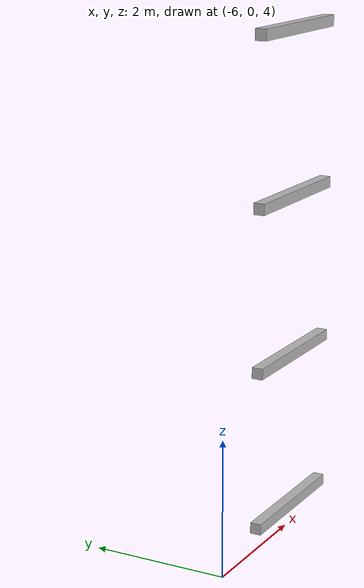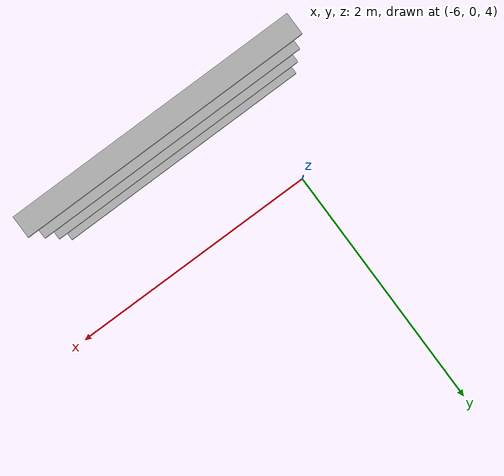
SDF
<sdf version="1.7">
 <world name="default">
  <model name="orthogonal_747_2.000.15_TS">
   <static>1</static>
   <link name="x_link_3_2_0">
    <inertial>
     <mass>1</mass>
     <inertia>
      <ixx>0.166667</ixx>
      <ixy>0</ixy>
      <ixz>0</ixz>
      <iyy>0.166667</iyy>
      <iyz>0</iyz>
      <izz>0.166667</izz>
     </inertia>
    </inertial>
    <pose>1.075 4.3 7.525 0 -0 0</pose>
    <visual name="visual_0">
     <laser_retro>2948</laser_retro>
     <geometry><box><size>2 1e-06 0.15</size></box></geometry>
     <material>
      <script><name>Gazebo/Grey</name><uri>file://media/materials/scripts/gazebo.material</uri></script>
      <shader type="pixel"><normal_map>__default__</normal_map></shader>
      <ambient>0.678 0.498 0.659 1</ambient>
      <diffuse>0.7 0.7 0.7 1</diffuse>
      <specular>0.01 0.01 0.01 1</specular>
      <emissive>0 0 0 1</emissive>
     </material>
     <pose>0 -0.075 0 0 -0 0</pose>
     <transparency>1</transparency>
    </visual>
    <visual name="visual_1">
     <laser_retro>2949</laser_retro>
     <geometry><box><size>2 1e-06 0.15</size></box></geometry>
     <material>
      <script><name>Gazebo/Grey</name><uri>file://media/materials/scripts/gazebo.material</uri></script>
      <shader type="pixel"><normal_map>__default__</normal_map></shader>
      <ambient>0.447 0.624 0.812 1</ambient>
      <diffuse>0.7 0.7 0.7 1</diffuse>
      <specular>0.01 0.01 0.01 1</specular>
      <emissive>0 0 0 1</emissive>
     </material>
     <pose>0 0.075 0 0 -0 0</pose>
     <transparency>1</transparency>
    </visual>
    <visual name="visual_2">
     <laser_retro>2950</laser_retro>
     <geometry><box><size>2 0.15 1e-06</size></box></geometry>
     <material>
      <script><name>Gazebo/Grey</name><uri>file://media/materials/scripts/gazebo.material</uri></script>
      <shader type="pixel"><normal_map>__default__</normal_map></shader>
      <ambient>0.988 0.686 0.243 1</ambient>
      <diffuse>0.7 0.7 0.7 1</diffuse>
      <specular>0.01 0.01 0.01 1</specular>
      <emissive>0 0 0 1</emissive>
     </material>
     <pose>0 0 -0.075 0 -0 0</pose>
     <transparency>1</transparency>
    </visual>
    <visual name="visual_3">
     <laser_retro>2951</laser_retro>
     <geometry><box><size>1e-06 0.15 0.15</size></box></geometry>
     <material>
      <script><name>Gazebo/Grey</name><uri>file://media/materials/scripts/gazebo.material</uri></script>
      <shader type="pixel"><normal_map>__default__</normal_map></shader>
      <ambient>0.988 0.914 0.31 1</ambient>
      <diffuse>0.7 0.7 0.7 1</diffuse>
      <specular>0.01 0.01 0.01 1</specular>
      <emissive>0 0 0 1</emissive>
     </material>
     <pose>1 0 0 0 -0 0</pose>
     <transparency>1</transparency>
    </visual>
    <visual name="visual_4">
     <laser_retro>2952</laser_retro>
     <geometry><box><size>2 0.15 1e-06</size></box></geometry>
     <material>
      <script><name>Gazebo/Grey</name><uri>file://media/materials/scripts/gazebo.material</uri></script>
      <shader type="pixel"><normal_map>__default__</normal_map></shader>
      <ambient>0.937 0.161 0.161 1</ambient>
      <diffuse>0.7 0.7 0.7 1</diffuse>
      <specular>0.01 0.01 0.01 1</specular>
      <emissive>0 0 0 1</emissive>
     </material>
     <pose>0 0 0.075 0 -0 0</pose>
     <transparency>1</transparency>
    </visual>
    <visual name="visual_5">
     <laser_retro>2953</laser_retro>
     <geometry><box><size>1e-06 0.15 0.15</size></box></geometry>
     <material>
      <script><name>Gazebo/Grey</name><uri>file://media/materials/scripts/gazebo.material</uri></script>
      <shader type="pixel"><normal_map>__default__</normal_map></shader>
      <ambient>0.541 0.886 0.204 1</ambient>
      <diffuse>0.7 0.7 0.7 1</diffuse>
      <specular>0.01 0.01 0.01 1</specular>
      <emissive>0 0 0 1</emissive>
     </material>
     <pose>-1 0 0 0 -0 0</pose>
     <transparency>1</transparency>
    </visual>
    <visual name="visual_texture">
     <geometry><box><size>1.9998 0.149985 0.149985</size></box></geometry>
     <material>
      <script>
       <uri>model://BASE_MODELS/simple_block_v2_textured/materials/scripts</uri>
       <uri>model://BASE_MODELS/simple_block_v2_textured/materials/textures</uri>
       <name>metal</name>
      </script>
     </material>
     <laser_retro>2954</laser_retro>
    </visual>
    <collision name="collision">
     <geometry><box><size>2 0.15 0.15</size></box></geometry>
     <surface>
      <friction>
       <ode><mu>1</mu><mu2>1</mu2><fdir1>0 0 0</fdir1><slip1>0</slip1><slip2>0</slip2></ode>
       <torsional>
        <coefficient>1</coefficient>
        <patch_radius>0</patch_radius>
        <surface_radius>0</surface_radius>
        <use_patch_radius>1</use_patch_radius>
        <ode><slip>0</slip></ode>
       </torsional>
      </friction>
      <bounce><restitution_coefficient>0</restitution_coefficient><threshold>1e+06</threshold></bounce>
      <contact>
       <collide_without_contact>0</collide_without_contact>
       <collide_without_contact_bitmask>1</collide_without_contact_bitmask>
       <collide_bitmask>1</collide_bitmask>
       <ode>
        <soft_cfm>0</soft_cfm>
        <soft_erp>0.2</soft_erp>
        <kp>1e+13</kp>
        <kd>1</kd>
        <max_vel>0.01</max_vel>
        <min_depth>0</min_depth>
       </ode>
       <bullet>
        <split_impulse>1</split_impulse>
        <split_impulse_penetration_threshold>-0.01</split_impulse_penetration_threshold>
        <soft_cfm>0</soft_cfm>
        <soft_erp>0.2</soft_erp>
        <kp>1e+13</kp>
        <kd>1</kd>
       </bullet>
      </contact>
     </surface>
    </collision>
   </link>
   <link name="x_link_4_2_0">
    <inertial>
     <mass>1</mass>
     <inertia>
      <ixx>0.166667</ixx>
      <ixy>0</ixy>
      <ixz>0</ixz>
      <iyy>0.166667</iyy>
      <iyz>0</iyz>
      <izz>0.166667</izz>
     </inertia>
    </inertial>
    <pose>1.075 4.3 9.675 0 -0 0</pose>
    <visual name="visual_0">
     <laser_retro>3851</laser_retro>
     <geometry><box><size>2 1e-06 0.15</size></box></geometry>
     <material>
      <script><name>Gazebo/Grey</name><uri>file://media/materials/scripts/gazebo.material</uri></script>
      <shader type="pixel"><normal_map>__default__</normal_map></shader>
      <ambient>0.678 0.498 0.659 1</ambient>
      <diffuse>0.7 0.7 0.7 1</diffuse>
      <specular>0.01 0.01 0.01 1</specular>
      <emissive>0 0 0 1</emissive>
     </material>
     <pose>0 -0.075 0 0 -0 0</pose>
     <transparency>1</transparency>
    </visual>
    <visual name="visual_1">
     <laser_retro>3852</laser_retro>
     <geometry><box><size>2 1e-06 0.15</size></box></geometry>
     <material>
      <script><name>Gazebo/Grey</name><uri>file://media/materials/scripts/gazebo.material</uri></script>
      <shader type="pixel"><normal_map>__default__</normal_map></shader>
      <ambient>0.447 0.624 0.812 1</ambient>
      <diffuse>0.7 0.7 0.7 1</diffuse>
      <specular>0.01 0.01 0.01 1</specular>
      <emissive>0 0 0 1</emissive>
     </material>
     <pose>0 0.075 0 0 -0 0</pose>
     <transparency>1</transparency>
    </visual>
    <visual name="visual_2">
     <laser_retro>3853</laser_retro>
     <geometry><box><size>2 0.15 1e-06</size></box></geometry>
     <material>
      <script><name>Gazebo/Grey</name><uri>file://media/materials/scripts/gazebo.material</uri></script>
      <shader type="pixel"><normal_map>__default__</normal_map></shader>
      <ambient>0.988 0.686 0.243 1</ambient>
      <diffuse>0.7 0.7 0.7 1</diffuse>
      <specular>0.01 0.01 0.01 1</specular>
      <emissive>0 0 0 1</emissive>
     </material>
     <pose>0 0 -0.075 0 -0 0</pose>
     <transparency>1</transparency>
    </visual>
    <visual name="visual_3">
     <laser_retro>3854</laser_retro>
     <geometry><box><size>1e-06 0.15 0.15</size></box></geometry>
     <material>
      <script><name>Gazebo/Grey</name><uri>file://media/materials/scripts/gazebo.material</uri></script>
      <shader type="pixel"><normal_map>__default__</normal_map></shader>
      <ambient>0.988 0.914 0.31 1</ambient>
      <diffuse>0.7 0.7 0.7 1</diffuse>
      <specular>0.01 0.01 0.01 1</specular>
      <emissive>0 0 0 1</emissive>
     </material>
     <pose>1 0 0 0 -0 0</pose>
     <transparency>1</transparency>
    </visual>
    <visual name="visual_4">
     <laser_retro>3855</laser_retro>
     <geometry><box><size>2 0.15 1e-06</size></box></geometry>
     <material>
      <script><name>Gazebo/Grey</name><uri>file://media/materials/scripts/gazebo.material</uri></script>
      <shader type="pixel"><normal_map>__default__</normal_map></shader>
      <ambient>0.937 0.161 0.161 1</ambient>
      <diffuse>0.7 0.7 0.7 1</diffuse>
      <specular>0.01 0.01 0.01 1</specular>
      <emissive>0 0 0 1</emissive>
     </material>
     <pose>0 0 0.075 0 -0 0</pose>
     <transparency>1</transparency>
    </visual>
    <visual name="visual_5">
     <laser_retro>3856</laser_retro>
     <geometry><box><size>1e-06 0.15 0.15</size></box></geometry>
     <material>
      <script><name>Gazebo/Grey</name><uri>file://media/materials/scripts/gazebo.material</uri></script>
      <shader type="pixel"><normal_map>__default__</normal_map></shader>
      <ambient>0.541 0.886 0.204 1</ambient>
      <diffuse>0.7 0.7 0.7 1</diffuse>
      <specular>0.01 0.01 0.01 1</specular>
      <emissive>0 0 0 1</emissive>
     </material>
     <pose>-1 0 0 0 -0 0</pose>
     <transparency>1</transparency>
    </visual>
    <visual name="visual_texture">
     <geometry><box><size>1.9998 0.149985 0.149985</size></box></geometry>
     <material>
      <script>
       <uri>model://BASE_MODELS/simple_block_v2_textured/materials/scripts</uri>
       <uri>model://BASE_MODELS/simple_block_v2_textured/materials/textures</uri>
       <name>metal</name>
      </script>
     </material>
     <laser_retro>3857</laser_retro>
    </visual>
    <collision name="collision">
     <geometry><box><size>2 0.15 0.15</size></box></geometry>
     <surface>
      <friction>
       <ode><mu>1</mu><mu2>1</mu2><fdir1>0 0 0</fdir1><slip1>0</slip1><slip2>0</slip2></ode>
       <torsional>
        <coefficient>1</coefficient>
        <patch_radius>0</patch_radius>
        <surface_radius>0</surface_radius>
        <use_patch_radius>1</use_patch_radius>
        <ode><slip>0</slip></ode>
       </torsional>
      </friction>
      <bounce><restitution_coefficient>0</restitution_coefficient><threshold>1e+06</threshold></bounce>
      <contact>
       <collide_without_contact>0</collide_without_contact>
       <collide_without_contact_bitmask>1</collide_without_contact_bitmask>
       <collide_bitmask>1</collide_bitmask>
       <ode>
        <soft_cfm>0</soft_cfm>
        <soft_erp>0.2</soft_erp>
        <kp>1e+13</kp>
        <kd>1</kd>
        <max_vel>0.01</max_vel>
        <min_depth>0</min_depth>
       </ode>
       <bullet>
        <split_impulse>1</split_impulse>
        <split_impulse_penetration_threshold>-0.01</split_impulse_penetration_threshold>
        <soft_cfm>0</soft_cfm>
        <soft_erp>0.2</soft_erp>
        <kp>1e+13</kp>
        <kd>1</kd>
       </bullet>
      </contact>
     </surface>
    </collision>
   </link>
   <link name="x_link_5_2_0">
    <inertial>
     <mass>1</mass>
     <inertia>
      <ixx>0.166667</ixx>
      <ixy>0</ixy>
      <ixz>0</ixz>
      <iyy>0.166667</iyy>
      <iyz>0</iyz>
      <izz>0.166667</izz>
     </inertia>
    </inertial>
    <pose>1.075 4.3 11.825 0 -0 0</pose>
    <visual name="visual_0">
     <laser_retro>4754</laser_retro>
     <geometry><box><size>2 1e-06 0.15</size></box></geometry>
     <material>
      <script><name>Gazebo/Grey</name><uri>file://media/materials/scripts/gazebo.material</uri></script>
      <shader type="pixel"><normal_map>__default__</normal_map></shader>
      <ambient>0.678 0.498 0.659 1</ambient>
      <diffuse>0.7 0.7 0.7 1</diffuse>
      <specular>0.01 0.01 0.01 1</specular>
      <emissive>0 0 0 1</emissive>
     </material>
     <pose>0 -0.075 0 0 -0 0</pose>
     <transparency>1</transparency>
    </visual>
    <visual name="visual_1">
     <laser_retro>4755</laser_retro>
     <geometry><box><size>2 1e-06 0.15</size></box></geometry>
     <material>
      <script><name>Gazebo/Grey</name><uri>file://media/materials/scripts/gazebo.material</uri></script>
      <shader type="pixel"><normal_map>__default__</normal_map></shader>
      <ambient>0.447 0.624 0.812 1</ambient>
      <diffuse>0.7 0.7 0.7 1</diffuse>
      <specular>0.01 0.01 0.01 1</specular>
      <emissive>0 0 0 1</emissive>
     </material>
     <pose>0 0.075 0 0 -0 0</pose>
     <transparency>1</transparency>
    </visual>
    <visual name="visual_2">
     <laser_retro>4756</laser_retro>
     <geometry><box><size>2 0.15 1e-06</size></box></geometry>
     <material>
      <script><name>Gazebo/Grey</name><uri>file://media/materials/scripts/gazebo.material</uri></script>
      <shader type="pixel"><normal_map>__default__</normal_map></shader>
      <ambient>0.988 0.686 0.243 1</ambient>
      <diffuse>0.7 0.7 0.7 1</diffuse>
      <specular>0.01 0.01 0.01 1</specular>
      <emissive>0 0 0 1</emissive>
     </material>
     <pose>0 0 -0.075 0 -0 0</pose>
     <transparency>1</transparency>
    </visual>
    <visual name="visual_3">
     <laser_retro>4757</laser_retro>
     <geometry><box><size>1e-06 0.15 0.15</size></box></geometry>
     <material>
      <script><name>Gazebo/Grey</name><uri>file://media/materials/scripts/gazebo.material</uri></script>
      <shader type="pixel"><normal_map>__default__</normal_map></shader>
      <ambient>0.988 0.914 0.31 1</ambient>
      <diffuse>0.7 0.7 0.7 1</diffuse>
      <specular>0.01 0.01 0.01 1</specular>
      <emissive>0 0 0 1</emissive>
     </material>
     <pose>1 0 0 0 -0 0</pose>
     <transparency>1</transparency>
    </visual>
    <visual name="visual_4">
     <laser_retro>4758</laser_retro>
     <geometry><box><size>2 0.15 1e-06</size></box></geometry>
     <material>
      <script><name>Gazebo/Grey</name><uri>file://media/materials/scripts/gazebo.material</uri></script>
      <shader type="pixel"><normal_map>__default__</normal_map></shader>
      <ambient>0.937 0.161 0.161 1</ambient>
      <diffuse>0.7 0.7 0.7 1</diffuse>
      <specular>0.01 0.01 0.01 1</specular>
      <emissive>0 0 0 1</emissive>
     </material>
     <pose>0 0 0.075 0 -0 0</pose>
     <transparency>1</transparency>
    </visual>
    <visual name="visual_5">
     <laser_retro>4759</laser_retro>
     <geometry><box><size>1e-06 0.15 0.15</size></box></geometry>
     <material>
      <script><name>Gazebo/Grey</name><uri>file://media/materials/scripts/gazebo.material</uri></script>
      <shader type="pixel"><normal_map>__default__</normal_map></shader>
      <ambient>0.541 0.886 0.204 1</ambient>
      <diffuse>0.7 0.7 0.7 1</diffuse>
      <specular>0.01 0.01 0.01 1</specular>
      <emissive>0 0 0 1</emissive>
     </material>
     <pose>-1 0 0 0 -0 0</pose>
     <transparency>1</transparency>
    </visual>
    <visual name="visual_texture">
     <geometry><box><size>1.9998 0.149985 0.149985</size></box></geometry>
     <material>
      <script>
       <uri>model://BASE_MODELS/simple_block_v2_textured/materials/scripts</uri>
       <uri>model://BASE_MODELS/simple_block_v2_textured/materials/textures</uri>
       <name>metal</name>
      </script>
     </material>
     <laser_retro>4760</laser_retro>
    </visual>
    <collision name="collision">
     <geometry><box><size>2 0.15 0.15</size></box></geometry>
     <surface>
      <friction>
       <ode><mu>1</mu><mu2>1</mu2><fdir1>0 0 0</fdir1><slip1>0</slip1><slip2>0</slip2></ode>
       <torsional>
        <coefficient>1</coefficient>
        <patch_radius>0</patch_radius>
        <surface_radius>0</surface_radius>
        <use_patch_radius>1</use_patch_radius>
        <ode><slip>0</slip></ode>
       </torsional>
      </friction>
      <bounce><restitution_coefficient>0</restitution_coefficient><threshold>1e+06</threshold></bounce>
      <contact>
       <collide_without_contact>0</collide_without_contact>
       <collide_without_contact_bitmask>1</collide_without_contact_bitmask>
       <collide_bitmask>1</collide_bitmask>
       <ode>
        <soft_cfm>0</soft_cfm>
        <soft_erp>0.2</soft_erp>
        <kp>1e+13</kp>
        <kd>1</kd>
        <max_vel>0.01</max_vel>
        <min_depth>0</min_depth>
       </ode>
       <bullet>
        <split_impulse>1</split_impulse>
        <split_impulse_penetration_threshold>-0.01</split_impulse_penetration_threshold>
        <soft_cfm>0</soft_cfm>
        <soft_erp>0.2</soft_erp>
        <kp>1e+13</kp>
        <kd>1</kd>
       </bullet>
      </contact>
     </surface>
    </collision>
   </link>
   <link name="x_link_6_2_0">
    <inertial>
     <mass>1</mass>
     <inertia>
      <ixx>0.166667</ixx>
      <ixy>0</ixy>
      <ixz>0</ixz>
      <iyy>0.166667</iyy>
      <iyz>0</iyz>
      <izz>0.166667</izz>
     </inertia>
    </inertial>
    <pose>1.075 4.3 13.975 0 -0 0</pose>
    <visual name="visual_0">
     <laser_retro>5699</laser_retro>
     <geometry><box><size>2 1e-06 0.15</size></box></geometry>
     <material>
      <script><name>Gazebo/Grey</name><uri>file://media/materials/scripts/gazebo.material</uri></script>
      <shader type="pixel"><normal_map>__default__</normal_map></shader>
      <ambient>0.678 0.498 0.659 1</ambient>
      <diffuse>0.7 0.7 0.7 1</diffuse>
      <specular>0.01 0.01 0.01 1</specular>
      <emissive>0 0 0 1</emissive>
     </material>
     <pose>0 -0.075 0 0 -0 0</pose>
     <transparency>1</transparency>
    </visual>
    <visual name="visual_1">
     <laser_retro>5700</laser_retro>
     <geometry><box><size>2 1e-06 0.15</size></box></geometry>
     <material>
      <script><name>Gazebo/Grey</name><uri>file://media/materials/scripts/gazebo.material</uri></script>
      <shader type="pixel"><normal_map>__default__</normal_map></shader>
      <ambient>0.447 0.624 0.812 1</ambient>
      <diffuse>0.7 0.7 0.7 1</diffuse>
      <specular>0.01 0.01 0.01 1</specular>
      <emissive>0 0 0 1</emissive>
     </material>
     <pose>0 0.075 0 0 -0 0</pose>
     <transparency>1</transparency>
    </visual>
    <visual name="visual_2">
     <laser_retro>5701</laser_retro>
     <geometry><box><size>2 0.15 1e-06</size></box></geometry>
     <material>
      <script><name>Gazebo/Grey</name><uri>file://media/materials/scripts/gazebo.material</uri></script>
      <shader type="pixel"><normal_map>__default__</normal_map></shader>
      <ambient>0.988 0.686 0.243 1</ambient>
      <diffuse>0.7 0.7 0.7 1</diffuse>
      <specular>0.01 0.01 0.01 1</specular>
      <emissive>0 0 0 1</emissive>
     </material>
     <pose>0 0 -0.075 0 -0 0</pose>
     <transparency>1</transparency>
    </visual>
    <visual name="visual_3">
     <laser_retro>5702</laser_retro>
     <geometry><box><size>1e-06 0.15 0.15</size></box></geometry>
     <material>
      <script><name>Gazebo/Grey</name><uri>file://media/materials/scripts/gazebo.material</uri></script>
      <shader type="pixel"><normal_map>__default__</normal_map></shader>
      <ambient>0.988 0.914 0.31 1</ambient>
      <diffuse>0.7 0.7 0.7 1</diffuse>
      <specular>0.01 0.01 0.01 1</specular>
      <emissive>0 0 0 1</emissive>
     </material>
     <pose>1 0 0 0 -0 0</pose>
     <transparency>1</transparency>
    </visual>
    <visual name="visual_4">
     <laser_retro>5703</laser_retro>
     <geometry><box><size>2 0.15 1e-06</size></box></geometry>
     <material>
      <script><name>Gazebo/Grey</name><uri>file://media/materials/scripts/gazebo.material</uri></script>
      <shader type="pixel"><normal_map>__default__</normal_map></shader>
      <ambient>0.937 0.161 0.161 1</ambient>
      <diffuse>0.7 0.7 0.7 1</diffuse>
      <specular>0.01 0.01 0.01 1</specular>
      <emissive>0 0 0 1</emissive>
     </material>
     <pose>0 0 0.075 0 -0 0</pose>
     <transparency>1</transparency>
    </visual>
    <visual name="visual_5">
     <laser_retro>5704</laser_retro>
     <geometry><box><size>1e-06 0.15 0.15</size></box></geometry>
     <material>
      <script><name>Gazebo/Grey</name><uri>file://media/materials/scripts/gazebo.material</uri></script>
      <shader type="pixel"><normal_map>__default__</normal_map></shader>
      <ambient>0.541 0.886 0.204 1</ambient>
      <diffuse>0.7 0.7 0.7 1</diffuse>
      <specular>0.01 0.01 0.01 1</specular>
      <emissive>0 0 0 1</emissive>
     </material>
     <pose>-1 0 0 0 -0 0</pose>
     <transparency>1</transparency>
    </visual>
    <visual name="visual_texture">
     <geometry><box><size>1.9998 0.149985 0.149985</size></box></geometry>
     <material>
      <script>
       <uri>model://BASE_MODELS/simple_block_v2_textured/materials/scripts</uri>
       <uri>model://BASE_MODELS/simple_block_v2_textured/materials/textures</uri>
       <name>metal</name>
      </script>
     </material>
     <laser_retro>5705</laser_retro>
    </visual>
    <collision name="collision">
     <geometry><box><size>2 0.15 0.15</size></box></geometry>
     <surface>
      <friction>
       <ode><mu>1</mu><mu2>1</mu2><fdir1>0 0 0</fdir1><slip1>0</slip1><slip2>0</slip2></ode>
       <torsional>
        <coefficient>1</coefficient>
        <patch_radius>0</patch_radius>
        <surface_radius>0</surface_radius>
        <use_patch_radius>1</use_patch_radius>
        <ode><slip>0</slip></ode>
       </torsional>
      </friction>
      <bounce><restitution_coefficient>0</restitution_coefficient><threshold>1e+06</threshold></bounce>
      <contact>
       <collide_without_contact>0</collide_without_contact>
       <collide_without_contact_bitmask>1</collide_without_contact_bitmask>
       <collide_bitmask>1</collide_bitmask>
       <ode>
        <soft_cfm>0</soft_cfm>
        <soft_erp>0.2</soft_erp>
        <kp>1e+13</kp>
        <kd>1</kd>
        <max_vel>0.01</max_vel>
        <min_depth>0</min_depth>
       </ode>
       <bullet>
        <split_impulse>1</split_impulse>
        <split_impulse_penetration_threshold>-0.01</split_impulse_penetration_threshold>
        <soft_cfm>0</soft_cfm>
        <soft_erp>0.2</soft_erp>
        <kp>1e+13</kp>
        <kd>1</kd>
       </bullet>
      </contact>
     </surface>
    </collision>
   </link>
   <pose>-6.47624 -5 -2.5 0 -0 0</pose>
  </model>
 </world>
</sdf>
